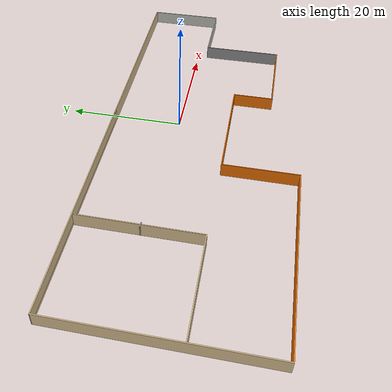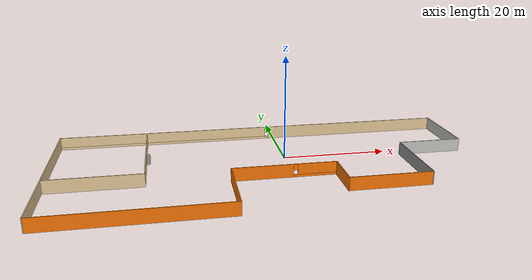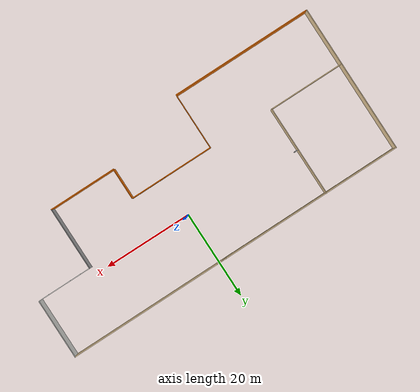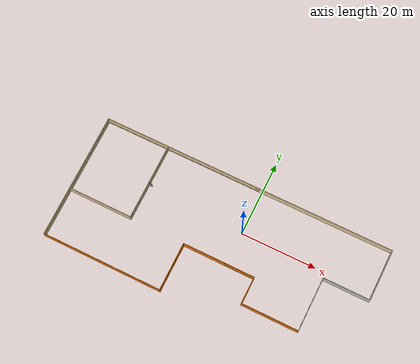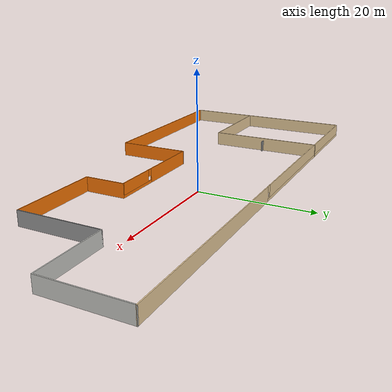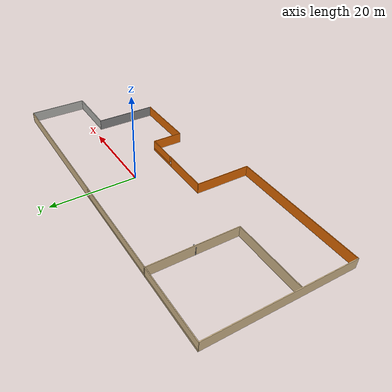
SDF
<?xml version='1.0'?>
<sdf version='1.6'>
  <model name='Building'>
    <pose frame=''>-4.08716 -5.12005 0 0 -0 0</pose>
    <link name='Door_0'>
      <collision name='Door_0_Collision'>
        <geometry>
          <box>
            <size>0.9 0.17 2</size>
          </box>
        </geometry>
        <pose frame=''>0 0 1 0 -0 0</pose>
      </collision>
      <visual name='Door_0_Visual'>
        <pose frame=''>0 0 1 0 -0 0</pose>
        <geometry>
          <box>
            <size>0.9 0.17 2</size>
          </box>
        </geometry>
        <material>
          <script>
            <uri>file://media/materials/scripts/gazebo.material</uri>
            <name>Gazebo/Grey</name>
          </script>
        </material>
      </visual>
      <pose frame=''>-21.8421 6.21903 0 0 -0 0</pose>
    </link>
    <link name='Wall_21'>
      <collision name='Wall_21_Collision'>
        <geometry>
          <box>
            <size>33.75 0.15 2.5</size>
          </box>
        </geometry>
        <pose frame=''>0 0 1.25 0 -0 0</pose>
      </collision>
      <visual name='Wall_21_Visual'>
        <pose frame=''>0 0 1.25 0 -0 0</pose>
        <geometry>
          <box>
            <size>33.75 0.15 2.5</size>
          </box>
        </geometry>
        <material>
          <script>
            <uri>file://media/materials/scripts/gazebo.material</uri>
            <name>Gazebo/Grey</name>
          </script>
          <ambient>0.921569 0.807843 0.615686 1</ambient>
        </material>
        <meta>
          <layer>0</layer>
        </meta>
      </visual>
      <pose frame=''>-39.2 -0.050046 0 0 0 -1.5708</pose>
    </link>
    <link name='Wall_22'>
      <collision name='Wall_22_Collision'>
        <geometry>
          <box>
            <size>32 0.15 2.5</size>
          </box>
        </geometry>
        <pose frame=''>0 0 1.25 0 -0 0</pose>
      </collision>
      <visual name='Wall_22_Visual'>
        <pose frame=''>0 0 1.25 0 -0 0</pose>
        <geometry>
          <box>
            <size>32 0.15 2.5</size>
          </box>
        </geometry>
        <material>
          <script>
            <uri>file://media/materials/scripts/gazebo.material</uri>
            <name>Gazebo/Grey</name>
          </script>
          <ambient>0.996078 0.47451 0.0196078 1</ambient>
        </material>
        <meta>
          <layer>0</layer>
        </meta>
      </visual>
      <pose frame=''>-23.275 -16.85 0 0 -0 0</pose>
    </link>
    <link name='Wall_23'>
      <collision name='Wall_23_Collision'>
        <geometry>
          <box>
            <size>13 0.15 2.5</size>
          </box>
        </geometry>
        <pose frame=''>0 0 1.25 0 -0 0</pose>
      </collision>
      <visual name='Wall_23_Visual'>
        <pose frame=''>0 0 1.25 0 -0 0</pose>
        <geometry>
          <box>
            <size>13 0.15 2.5</size>
          </box>
        </geometry>
        <material>
          <script>
            <uri>file://media/materials/scripts/gazebo.material</uri>
            <name>Gazebo/Grey</name>
          </script>
          <ambient>0.996078 0.47451 0.0196078 1</ambient>
        </material>
        <meta>
          <layer>0</layer>
        </meta>
      </visual>
      <pose frame=''>-7.35 -10.425 0 0 -0 1.5708</pose>
    </link>
    <link name='Wall_24'>
      <pose frame=''>2.2 -4.00005 0 0 -0 0</pose>
      <visual name='Wall_24_Visual_0'>
        <pose frame=''>-4.03379 0 1.25 0 -0 0</pose>
        <geometry>
          <box>
            <size>11.1824 0.15 2.5</size>
          </box>
        </geometry>
        <material>
          <script>
            <uri>file://media/materials/scripts/gazebo.material</uri>
            <name>Gazebo/Grey</name>
          </script>
          <ambient>0.996078 0.47451 0.0196078 1</ambient>
        </material>
        <meta>
          <layer>0</layer>
        </meta>
      </visual>
      <collision name='Wall_24_Collision_0'>
        <geometry>
          <box>
            <size>11.1824 0.15 2.5</size>
          </box>
        </geometry>
        <pose frame=''>-4.03379 0 1.25 0 -0 0</pose>
      </collision>
      <visual name='Wall_24_Visual_1'>
        <pose frame=''>5.59121 0 0.25 0 -0 0</pose>
        <geometry>
          <box>
            <size>8.06759 0.15 0.5</size>
          </box>
        </geometry>
        <material>
          <script>
            <uri>file://media/materials/scripts/gazebo.material</uri>
            <name>Gazebo/Grey</name>
          </script>
          <ambient>0.996078 0.47451 0.0196078 1</ambient>
        </material>
        <meta>
          <layer>0</layer>
        </meta>
      </visual>
      <collision name='Wall_24_Collision_1'>
        <geometry>
          <box>
            <size>8.06759 0.15 0.5</size>
          </box>
        </geometry>
        <pose frame=''>5.59121 0 0.25 0 -0 0</pose>
      </collision>
      <visual name='Wall_24_Visual_2'>
        <pose frame=''>5.99121 0 1.5 0 -0 0</pose>
        <geometry>
          <box>
            <size>7.26759 0.15 2</size>
          </box>
        </geometry>
        <material>
          <script>
            <uri>file://media/materials/scripts/gazebo.material</uri>
            <name>Gazebo/Grey</name>
          </script>
          <ambient>0.996078 0.47451 0.0196078 1</ambient>
        </material>
        <meta>
          <layer>0</layer>
        </meta>
      </visual>
      <collision name='Wall_24_Collision_2'>
        <geometry>
          <box>
            <size>7.26759 0.15 2</size>
          </box>
        </geometry>
        <pose frame=''>5.99121 0 1.5 0 -0 0</pose>
      </collision>
      <visual name='Wall_24_Visual_3'>
        <pose frame=''>1.95741 0 1.9 0 -0 0</pose>
        <geometry>
          <box>
            <size>0.8 0.15 1.2</size>
          </box>
        </geometry>
        <material>
          <script>
            <uri>file://media/materials/scripts/gazebo.material</uri>
            <name>Gazebo/Grey</name>
          </script>
          <ambient>0.996078 0.47451 0.0196078 1</ambient>
        </material>
        <meta>
          <layer>0</layer>
        </meta>
      </visual>
      <collision name='Wall_24_Collision_3'>
        <geometry>
          <box>
            <size>0.8 0.15 1.2</size>
          </box>
        </geometry>
        <pose frame=''>1.95741 0 1.9 0 -0 0</pose>
      </collision>
    </link>
    <link name='Wall_25'>
      <collision name='Wall_25_Collision'>
        <geometry>
          <box>
            <size>7.25 0.15 2.5</size>
          </box>
        </geometry>
        <pose frame=''>0 0 1.25 0 -0 0</pose>
      </collision>
      <visual name='Wall_25_Visual'>
        <pose frame=''>0 0 1.25 0 -0 0</pose>
        <geometry>
          <box>
            <size>7.25 0.15 2.5</size>
          </box>
        </geometry>
        <material>
          <script>
            <uri>file://media/materials/scripts/gazebo.material</uri>
            <name>Gazebo/Grey</name>
          </script>
          <ambient>0.996078 0.47451 0.0196078 1</ambient>
        </material>
        <meta>
          <layer>0</layer>
        </meta>
      </visual>
      <pose frame=''>11.75 -7.55005 0 0 0 -1.5708</pose>
    </link>
    <link name='Wall_26'>
      <collision name='Wall_26_Collision'>
        <geometry>
          <box>
            <size>15.25 0.15 2.5</size>
          </box>
        </geometry>
        <pose frame=''>0 0 1.25 0 -0 0</pose>
      </collision>
      <visual name='Wall_26_Visual'>
        <pose frame=''>0 0 1.25 0 -0 0</pose>
        <geometry>
          <box>
            <size>15.25 0.15 2.5</size>
          </box>
        </geometry>
        <material>
          <script>
            <uri>file://media/materials/scripts/gazebo.material</uri>
            <name>Gazebo/Grey</name>
          </script>
          <ambient>0.996078 0.47451 0.0196078 1</ambient>
        </material>
        <meta>
          <layer>0</layer>
        </meta>
      </visual>
      <pose frame=''>19.3 -11.1 0 0 -0 0</pose>
    </link>
    <link name='Wall_27'>
      <collision name='Wall_27_Collision'>
        <geometry>
          <box>
            <size>14.5 0.15 2.5</size>
          </box>
        </geometry>
        <pose frame=''>0 0 1.25 0 -0 0</pose>
      </collision>
      <visual name='Wall_27_Visual'>
        <pose frame=''>0 0 1.25 0 -0 0</pose>
        <geometry>
          <box>
            <size>14.5 0.15 2.5</size>
          </box>
        </geometry>
        <material>
          <script>
            <uri>file://media/materials/scripts/gazebo.material</uri>
            <name>Gazebo/Grey</name>
          </script>
          <ambient>1 1 1 1</ambient>
        </material>
        <meta>
          <layer>0</layer>
        </meta>
      </visual>
      <pose frame=''>26.85 -3.92505 0 0 -0 1.5708</pose>
    </link>
    <link name='Wall_28'>
      <collision name='Wall_28_Collision'>
        <geometry>
          <box>
            <size>12.5 0.15 2.5</size>
          </box>
        </geometry>
        <pose frame=''>0 0 1.25 0 -0 0</pose>
      </collision>
      <visual name='Wall_28_Visual'>
        <pose frame=''>0 0 1.25 0 -0 0</pose>
        <geometry>
          <box>
            <size>12.5 0.15 2.5</size>
          </box>
        </geometry>
        <material>
          <script>
            <uri>file://media/materials/scripts/gazebo.material</uri>
            <name>Gazebo/CeilingTiled</name>
          </script>
          <ambient>1 1 1 1</ambient>
        </material>
        <meta>
          <layer>0</layer>
        </meta>
      </visual>
      <pose frame=''>33.025 3.24995 0 0 -0 0</pose>
    </link>
    <link name='Wall_29'>
      <collision name='Wall_29_Collision'>
        <geometry>
          <box>
            <size>13.75 0.15 2.5</size>
          </box>
        </geometry>
        <pose frame=''>0 0 1.25 0 -0 0</pose>
      </collision>
      <visual name='Wall_29_Visual'>
        <pose frame=''>0 0 1.25 0 -0 0</pose>
        <geometry>
          <box>
            <size>13.75 0.15 2.5</size>
          </box>
        </geometry>
        <material>
          <script>
            <uri>file://media/materials/scripts/gazebo.material</uri>
            <name>Gazebo/CeilingTiled</name>
          </script>
          <ambient>1 1 1 1</ambient>
        </material>
        <meta>
          <layer>0</layer>
        </meta>
      </visual>
      <pose frame=''>39.2 10.05 0 0 -0 1.5708</pose>
    </link>
    <link name='Wall_30'>
      <pose frame=''>0 16.8 0 0 0 -3.14032</pose>
      <visual name='Wall_30_Visual_0'>
        <pose frame=''>-21.194 0 1.25 0 -0 0</pose>
        <geometry>
          <box>
            <size>36.162 0.15 2.5</size>
          </box>
        </geometry>
        <material>
          <script>
            <uri>file://media/materials/scripts/gazebo.material</uri>
            <name>Gazebo/Grey</name>
          </script>
          <ambient>0.921569 0.807843 0.615686 1</ambient>
        </material>
        <meta>
          <layer>0</layer>
        </meta>
      </visual>
      <collision name='Wall_30_Collision_0'>
        <geometry>
          <box>
            <size>36.162 0.15 2.5</size>
          </box>
        </geometry>
        <pose frame=''>-21.194 0 1.25 0 -0 0</pose>
      </collision>
      <visual name='Wall_30_Visual_1'>
        <pose frame=''>18.081 0 0.25 0 -0 0</pose>
        <geometry>
          <box>
            <size>42.388 0.15 0.5</size>
          </box>
        </geometry>
        <material>
          <script>
            <uri>file://media/materials/scripts/gazebo.material</uri>
            <name>Gazebo/Grey</name>
          </script>
          <ambient>0.921569 0.807843 0.615686 1</ambient>
        </material>
        <meta>
          <layer>0</layer>
        </meta>
      </visual>
      <collision name='Wall_30_Collision_1'>
        <geometry>
          <box>
            <size>42.388 0.15 0.5</size>
          </box>
        </geometry>
        <pose frame=''>18.081 0 0.25 0 -0 0</pose>
      </collision>
      <visual name='Wall_30_Visual_2'>
        <pose frame=''>18.481 0 1.5 0 -0 0</pose>
        <geometry>
          <box>
            <size>41.588 0.15 2</size>
          </box>
        </geometry>
        <material>
          <script>
            <uri>file://media/materials/scripts/gazebo.material</uri>
            <name>Gazebo/Grey</name>
          </script>
          <ambient>0.921569 0.807843 0.615686 1</ambient>
        </material>
        <meta>
          <layer>0</layer>
        </meta>
      </visual>
      <collision name='Wall_30_Collision_2'>
        <geometry>
          <box>
            <size>41.588 0.15 2</size>
          </box>
        </geometry>
        <pose frame=''>18.481 0 1.5 0 -0 0</pose>
      </collision>
      <visual name='Wall_30_Visual_3'>
        <pose frame=''>-2.71301 0 1.9 0 -0 0</pose>
        <geometry>
          <box>
            <size>0.8 0.15 1.2</size>
          </box>
        </geometry>
        <material>
          <script>
            <uri>file://media/materials/scripts/gazebo.material</uri>
            <name>Gazebo/Grey</name>
          </script>
          <ambient>0.921569 0.807843 0.615686 1</ambient>
        </material>
        <meta>
          <layer>0</layer>
        </meta>
      </visual>
      <collision name='Wall_30_Collision_3'>
        <geometry>
          <box>
            <size>0.8 0.15 1.2</size>
          </box>
        </geometry>
        <pose frame=''>-2.71301 0 1.9 0 -0 0</pose>
      </collision>
    </link>
    <link name='Wall_32'>
      <collision name='Wall_32_Collision'>
        <geometry>
          <box>
            <size>20.75 0.15 2.5</size>
          </box>
        </geometry>
        <pose frame=''>0 0 1.25 0 -0 0</pose>
      </collision>
      <visual name='Wall_32_Visual'>
        <pose frame=''>0 0 1.25 0 -0 0</pose>
        <geometry>
          <box>
            <size>20.75 0.15 2.5</size>
          </box>
        </geometry>
        <material>
          <script>
            <uri>file://media/materials/scripts/gazebo.material</uri>
            <name>Gazebo/Grey</name>
          </script>
          <ambient>0.921569 0.807843 0.615686 1</ambient>
        </material>
        <meta>
          <layer>0</layer>
        </meta>
      </visual>
      <pose frame=''>-22.186 6.54567 0 0 -0 1.5708</pose>
    </link>
    <link name='Wall_34'>
      <collision name='Wall_34_Collision'>
        <geometry>
          <box>
            <size>17 0.15 2.5</size>
          </box>
        </geometry>
        <pose frame=''>0 0 1.25 0 -0 0</pose>
      </collision>
      <visual name='Wall_34_Visual'>
        <pose frame=''>0 0 1.25 0 -0 0</pose>
        <geometry>
          <box>
            <size>17 0.15 2.5</size>
          </box>
        </geometry>
        <material>
          <script>
            <uri>file://media/materials/scripts/gazebo.material</uri>
            <name>Gazebo/Grey</name>
          </script>
          <ambient>0.921569 0.807843 0.615686 1</ambient>
        </material>
        <meta>
          <layer>0</layer>
        </meta>
      </visual>
      <pose frame=''>-30.611 -3.75433 0 0 -0 3.14159</pose>
    </link>
    <static>1</static>
  </model>
</sdf>
